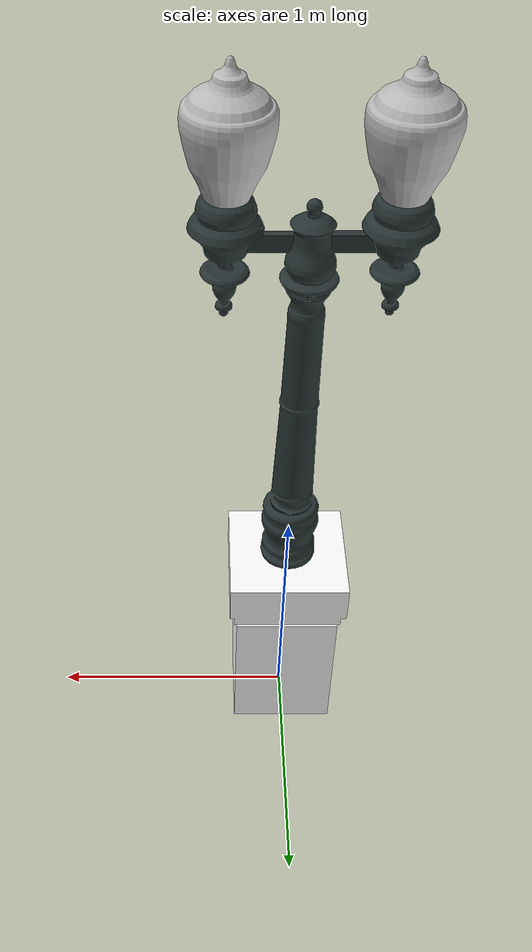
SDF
<?xml version="1.0" ?>
<sdf version="1.5">
  <model name="lamp_street_1">
    <link name="link">
      <pose>0 0 0 0 0 0</pose>
      <collision name="collision">
        <geometry>
          <mesh>
            <uri>model://lamp_street_1/meshes/model.dae</uri>
          </mesh>
        </geometry>
      </collision>
      <visual name="visual">
        <geometry>
          <mesh>
            <uri>model://lamp_street_1/meshes/model.dae</uri>
          </mesh>
        </geometry>
      </visual>
    </link>
    <static>1</static>
  </model>
</sdf>
